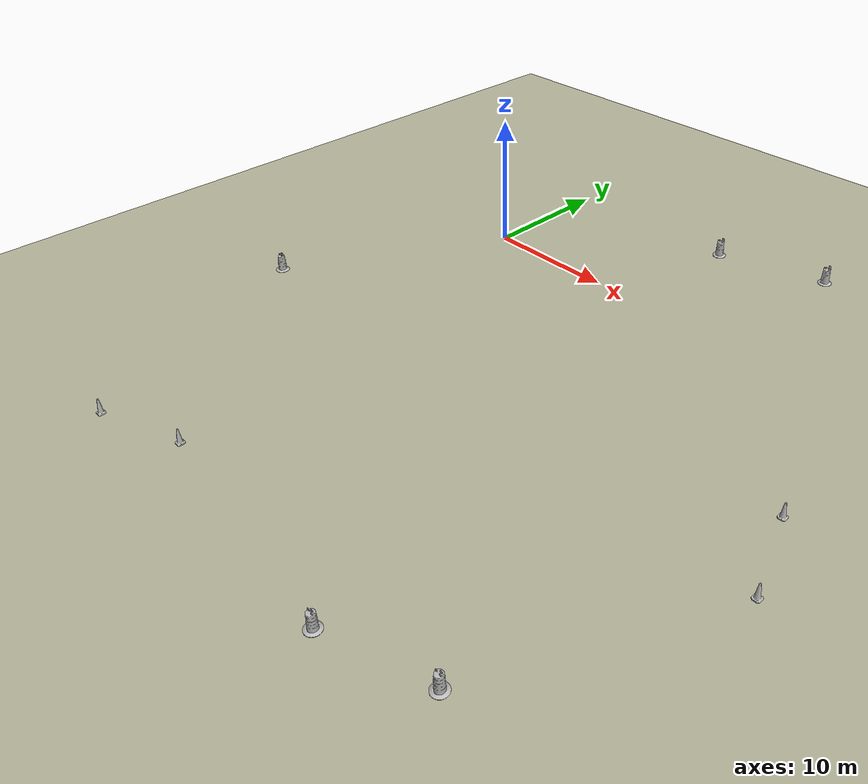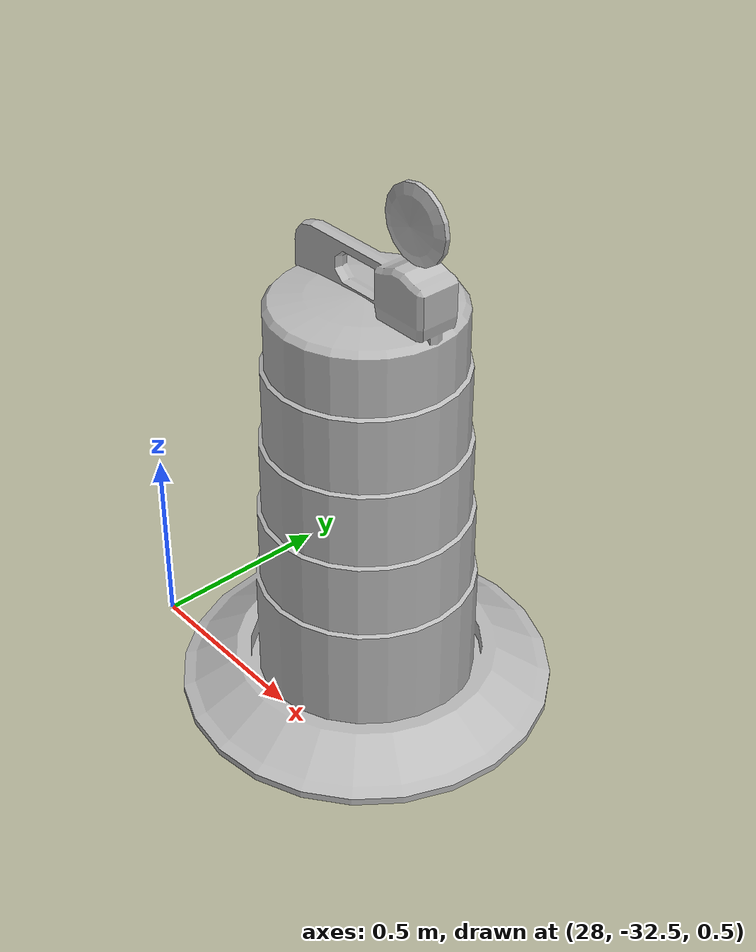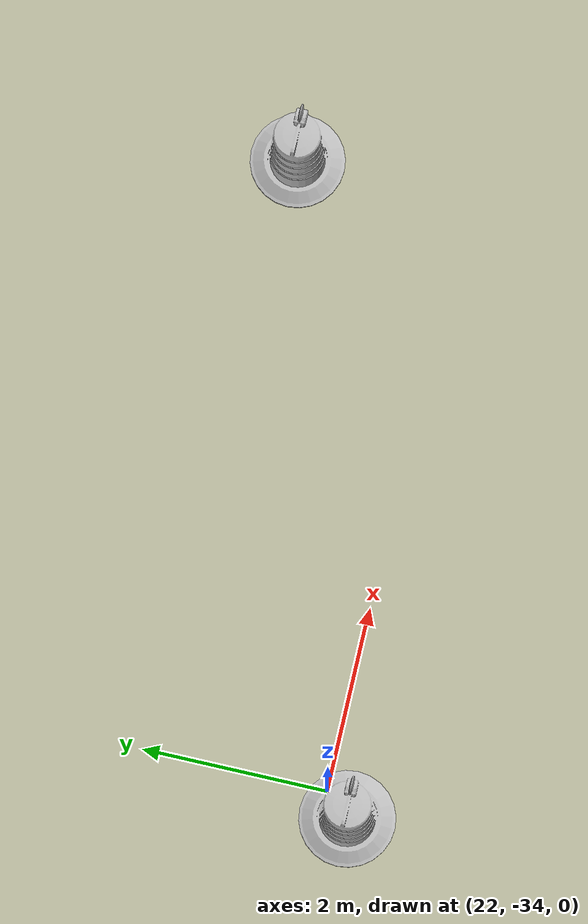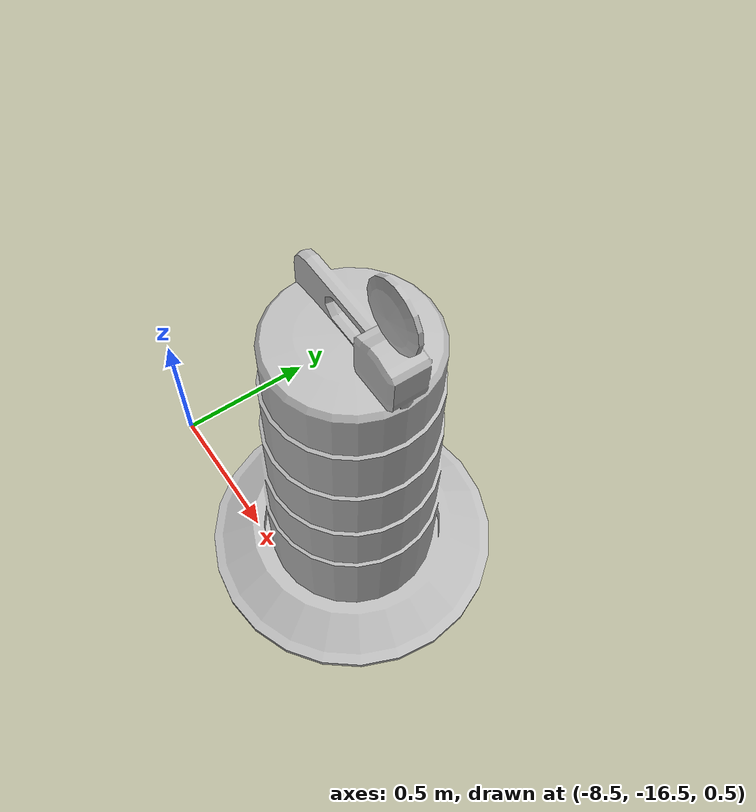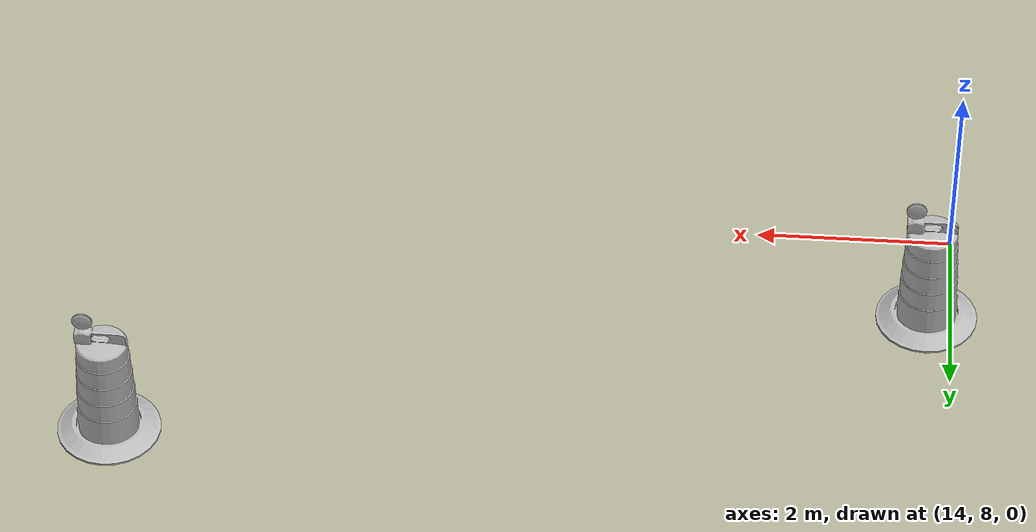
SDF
<sdf version="1.7">
 <world name="default">
  <spherical_coordinates>
   <surface_model>EARTH_WGS84</surface_model>
   <latitude_deg>48.6261</latitude_deg>
   <longitude_deg>1.77239</longitude_deg>
   <elevation>0</elevation>
   <heading_deg>0</heading_deg>
  </spherical_coordinates>
  <scene>
   <grid>0</grid>
   <origin_visual>0</origin_visual>
   <ambient>0.592 0.624 0.635 1</ambient>
   <background>0.35 0.35 0.35 1</background>
   <shadows>0</shadows>
  </scene>
  <light name="sun" type="directional">
   <pose>22 -4 103 0 -1 0</pose>
   <cast_shadows>0</cast_shadows>
   <diffuse>0.8 0.8 0.8 1</diffuse>
   <specular>0.5 0.5 0.5 1</specular>
   <attenuation>
    <range>1002</range>
    <constant>0.9</constant>
    <linear>0.01</linear>
    <quadratic>0.001</quadratic>
   </attenuation>
   <direction>-0.5 0.1 -0.4</direction>
   <spot><inner_angle>0</inner_angle><outer_angle>0</outer_angle><falloff>0</falloff></spot>
  </light>
  <light name="sun_3" type="directional">
   <pose>22 -4 103 0 -1 0</pose>
   <cast_shadows>0</cast_shadows>
   <diffuse>0.8 0.8 0.8 1</diffuse>
   <specular>0.5 0.5 0.5 1</specular>
   <attenuation>
    <range>1002</range>
    <constant>0.9</constant>
    <linear>0.01</linear>
    <quadratic>0.001</quadratic>
   </attenuation>
   <direction>-0.5 0.1 -0.4</direction>
   <spot><inner_angle>0</inner_angle><outer_angle>0</outer_angle><falloff>0</falloff></spot>
  </light>
  <physics name="default_physics" default="0" type="ode">
   <max_step_size>0.001</max_step_size>
   <real_time_factor>1</real_time_factor>
   <real_time_update_rate>1000</real_time_update_rate>
  </physics>
  <model name="ackermann_field">
   <static>1</static>
   <link name="field">
    <pose>0 0 0.01 0 -0 0</pose>
    <collision name="collision">
     <geometry><plane><normal>0 0 1</normal><size>30 20</size></plane></geometry>
     <surface><friction><ode><mu>100</mu><mu2>50</mu2></ode></friction></surface>
    </collision>
   </link>
   <pose>138.5 -86.6 0 0 -0 1.57</pose>
  </model>
  <model name="plane">
   <static>1</static>
   <link name="link">
    <collision name="collision">
     <geometry><plane><normal>0 0 1</normal><size>1500 1500</size></plane></geometry>
     <surface>
      <friction>
       <ode><mu>1000</mu><mu2>500</mu2></ode>
       <contact><ode><kp>1e+06</kp><kd>100</kd><max_vel>1</max_vel><min_depth>0</min_depth></ode></contact>
      </friction>
     </surface>
    </collision>
    <visual name="visual">
     <geometry><plane><normal>0 0 1</normal><size>1500 1500</size></plane></geometry>
     <material>
      <script><uri>file://media/materials/scripts/gazebo.material</uri><name>Gazebo/Residential</name></script>
     </material>
    </visual>
   </link>
  </model>
  <gravity>0 0 -9.8</gravity>
  <magnetic_field>6e-06 2.3e-05 -4.2e-05</magnetic_field>
  <atmosphere type="adiabatic"/>
  <model name="Construction Cone">
   <static>1</static>
   <link name="link">
    <collision name="collision">
     <geometry>
      <mesh><scale>10 10 10</scale><uri>model://construction_cone/meshes/construction_cone.dae</uri></mesh>
     </geometry>
    </collision>
    <visual name="visual">
     <geometry>
      <mesh><scale>10 10 10</scale><uri>model://construction_cone/meshes/construction_cone.dae</uri></mesh>
     </geometry>
    </visual>
    <inertial>
     <inertia><ixx>1</ixx><ixy>0</ixy><ixz>0</ixz><iyy>1</iyy><iyz>0</iyz><izz>1</izz></inertia>
     <mass>1</mass>
    </inertial>
   </link>
   <pose>-0.872881 -34.0897 0.4 0 -0 0</pose>
  </model>
  <model name="Construction Cone_0">
   <static>1</static>
   <link name="link">
    <collision name="collision">
     <geometry>
      <mesh><scale>10 10 10</scale><uri>model://construction_cone/meshes/construction_cone.dae</uri></mesh>
     </geometry>
    </collision>
    <visual name="visual">
     <geometry>
      <mesh><scale>10 10 10</scale><uri>model://construction_cone/meshes/construction_cone.dae</uri></mesh>
     </geometry>
    </visual>
    <inertial>
     <inertia><ixx>1</ixx><ixy>0</ixy><ixz>0</ixz><iyy>1</iyy><iyz>0</iyz><izz>1</izz></inertia>
     <mass>1</mass>
    </inertial>
   </link>
   <pose>5.09341 -32.0286 0.4 0 0 -0.000477</pose>
  </model>
  <model name="Construction Cone_1">
   <static>1</static>
   <link name="link">
    <collision name="collision">
     <geometry>
      <mesh><scale>10 10 10</scale><uri>model://construction_cone/meshes/construction_cone.dae</uri></mesh>
     </geometry>
    </collision>
    <visual name="visual">
     <geometry>
      <mesh><scale>10 10 10</scale><uri>model://construction_cone/meshes/construction_cone.dae</uri></mesh>
     </geometry>
    </visual>
    <inertial>
     <inertia><ixx>1</ixx><ixy>0</ixy><ixz>0</ixz><iyy>1</iyy><iyz>0</iyz><izz>1</izz></inertia>
     <mass>1</mass>
    </inertial>
   </link>
   <pose>33.3519 -11.8873 0.4 0 -0 0.002303</pose>
  </model>
  <model name="Construction Cone_2">
   <static>1</static>
   <link name="link">
    <collision name="collision">
     <geometry>
      <mesh><scale>10 10 10</scale><uri>model://construction_cone/meshes/construction_cone.dae</uri></mesh>
     </geometry>
    </collision>
    <visual name="visual">
     <geometry>
      <mesh><scale>10 10 10</scale><uri>model://construction_cone/meshes/construction_cone.dae</uri></mesh>
     </geometry>
    </visual>
    <inertial>
     <inertia><ixx>1</ixx><ixy>0</ixy><ixz>0</ixz><iyy>1</iyy><iyz>0</iyz><izz>1</izz></inertia>
     <mass>1</mass>
    </inertial>
   </link>
   <pose>35.4882 -17.6066 0.4 0 0 -0.006196</pose>
  </model>
  <model name="Construction Barrel">
   <static>1</static>
   <link name="link">
    <inertial>
     <pose>0 0 0.4 0 -0 0</pose>
     <mass>500</mass>
     <inertia><ixx>51.2096</ixx><iyy>51.2096</iyy><izz>25</izz><ixy>0</ixy><ixz>0</ixz><iyz>0</iyz></inertia>
    </inertial>
    <collision name="collision">
     <geometry><mesh><uri>model://construction_barrel/meshes/construction_barrel.dae</uri></mesh></geometry>
    </collision>
    <visual name="visual">
     <geometry><mesh><uri>model://construction_barrel/meshes/construction_barrel.dae</uri></mesh></geometry>
    </visual>
   </link>
   <pose>22.2516 11.6118 0.4 0 0 -0.024765</pose>
  </model>
  <model name="Construction Barrel_0">
   <static>1</static>
   <link name="link">
    <inertial>
     <pose>0 0 0.4 0 -0 0</pose>
     <mass>500</mass>
     <inertia><ixx>51.2096</ixx><iyy>51.2096</iyy><izz>25</izz><ixy>0</ixy><ixz>0</ixz><iyz>0</iyz></inertia>
    </inertial>
    <collision name="collision">
     <geometry><mesh><uri>model://construction_barrel/meshes/construction_barrel.dae</uri></mesh></geometry>
    </collision>
    <visual name="visual">
     <geometry><mesh><uri>model://construction_barrel/meshes/construction_barrel.dae</uri></mesh></geometry>
    </visual>
   </link>
   <pose>21.7217 -34.2752 0.4 0 -0 0</pose>
  </model>
  <model name="Construction Barrel_2">
   <static>1</static>
   <link name="link">
    <inertial>
     <pose>0 0 0.4 0 -0 0</pose>
     <mass>500</mass>
     <inertia><ixx>51.2096</ixx><iyy>51.2096</iyy><izz>25</izz><ixy>0</ixy><ixz>0</ixz><iyz>0</iyz></inertia>
    </inertial>
    <collision name="collision">
     <geometry><mesh><uri>model://construction_barrel/meshes/construction_barrel.dae</uri></mesh></geometry>
    </collision>
    <visual name="visual">
     <geometry><mesh><uri>model://construction_barrel/meshes/construction_barrel.dae</uri></mesh></geometry>
    </visual>
   </link>
   <pose>-7.82058 -16.2088 0.4 0 0 -0.009626</pose>
  </model>
  <model name="Construction Barrel_1">
   <static>1</static>
   <link name="link">
    <inertial>
     <pose>0 0 0.4 0 -0 0</pose>
     <mass>500</mass>
     <inertia><ixx>51.2096</ixx><iyy>51.2096</iyy><izz>25</izz><ixy>0</ixy><ixz>0</ixz><iyz>0</iyz></inertia>
    </inertial>
    <collision name="collision">
     <geometry><mesh><uri>model://construction_barrel/meshes/construction_barrel.dae</uri></mesh></geometry>
    </collision>
    <visual name="visual">
     <geometry><mesh><uri>model://construction_barrel/meshes/construction_barrel.dae</uri></mesh></geometry>
    </visual>
   </link>
   <pose>28.4674 -32.179 0.4 0 -0 0</pose>
  </model>
  <model name="Construction Barrel_3">
   <static>1</static>
   <link name="link">
    <inertial>
     <pose>0 0 0.4 0 -0 0</pose>
     <mass>500</mass>
     <inertia><ixx>51.2096</ixx><iyy>51.2096</iyy><izz>25</izz><ixy>0</ixy><ixz>0</ixz><iyz>0</iyz></inertia>
    </inertial>
    <collision name="collision">
     <geometry><mesh><uri>model://construction_barrel/meshes/construction_barrel.dae</uri></mesh></geometry>
    </collision>
    <visual name="visual">
     <geometry><mesh><uri>model://construction_barrel/meshes/construction_barrel.dae</uri></mesh></geometry>
    </visual>
   </link>
   <pose>14.2684 9.50023 0.4 0.00195 0.007512 -0.004505</pose>
  </model>
 </world>
</sdf>
